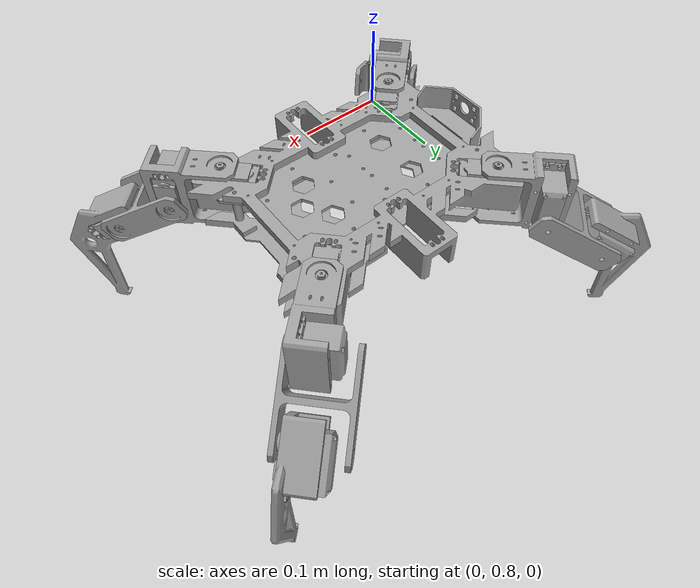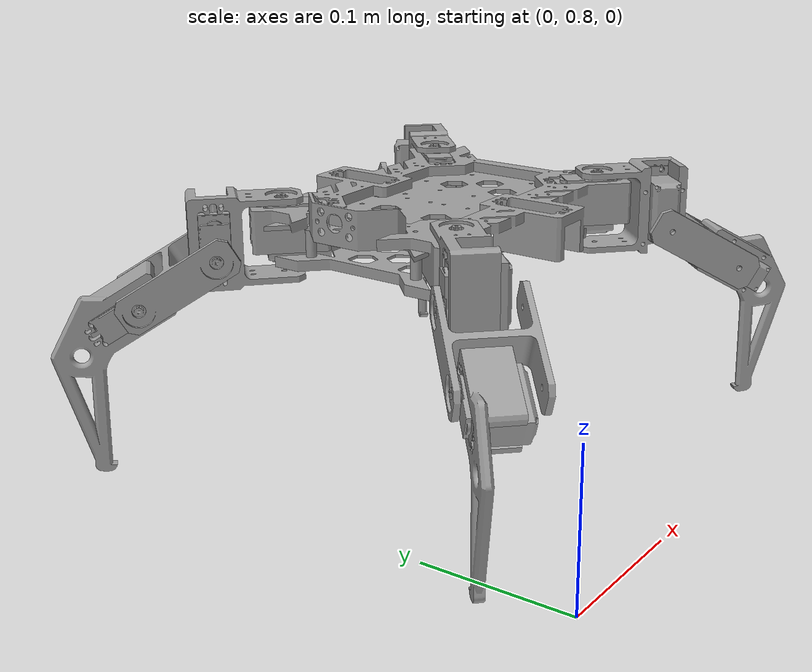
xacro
<?xml version="1.0"?>
<robot xmlns:xacro="http://www.ros.org/wiki/xacro" name="MAGI_Assemblyy">

  <!-- Materials (shared across all assemblies) -->
  <material name="Steel">
    <color rgba="0.627 0.627 0.627 1.0"/>
  </material>

  <!-- Assembly includes -->
  <xacro:include filename="$(find MAGI_Assemblyy_description)/urdf/assemblies/MAGI_Assemblyy.urdf.xacro"/>

  <!-- Instantiate assemblies -->
  <xacro:MAGI_Assemblyy prefix=""/>

</robot>

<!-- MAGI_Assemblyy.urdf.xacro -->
<robot xmlns:xacro="http://www.ros.org/wiki/xacro" name="MAGI_Assemblyy_macro">

  <xacro:macro name="MAGI_Assemblyy" params="prefix">

    <!-- Links -->
    <link name="${prefix}base_link">
      <inertial>
        <origin xyz="0.188950 1.012566 0.124814" rpy="0 0 0"/>
        <mass value="0.461432"/>
        <inertia ixx="7.929840e-02" ixy="8.295237e-06" ixz="1.419208e-04"
                 iyy="1.825252e-01" iyz="-2.865923e-06" izz="2.601024e-01"/>
      </inertial>
      <visual>
        <origin xyz="0.000000 0.000000 0.000000" rpy="0.000000 0.000000 0.000000"/>
        <geometry>
          <mesh filename="package://MAGI_Assemblyy_description/meshes/MAGI_Assemblyy/base_link.dae" scale="1 1 1"/>
        </geometry>
        <material name="Steel"/>
      </visual>
      <collision>
        <origin xyz="0.000000 0.000000 0.000000" rpy="0.000000 0.000000 0.000000"/>
        <geometry>
          <mesh filename="package://MAGI_Assemblyy_description/meshes/MAGI_Assemblyy/base_link_collision.stl" scale="0.01 0.01 0.01"/>
        </geometry>
      </collision>
    </link>

    <link name="${prefix}HexapodV3Mid">
      <inertial>
        <origin xyz="0.056935 -0.338657 0.392833" rpy="0 0 0"/>
        <mass value="0.430715"/>
        <inertia ixx="3.691505e-02" ixy="9.189307e-05" ixz="3.260568e-03"
                 iyy="1.624727e-01" iyz="1.642784e-06" izz="1.982639e-01"/>
      </inertial>
      <visual>
        <origin xyz="0.000000 0.000000 0.000000" rpy="0.000000 0.000000 0.000000"/>
        <geometry>
          <mesh filename="package://MAGI_Assemblyy_description/meshes/MAGI_Assemblyy/HexapodV3Mid.dae" scale="1 1 1"/>
        </geometry>
        <material name="Steel"/>
      </visual>
      <collision>
        <origin xyz="0.000000 0.000000 0.000000" rpy="0.000000 0.000000 0.000000"/>
        <geometry>
          <mesh filename="package://MAGI_Assemblyy_description/meshes/MAGI_Assemblyy/HexapodV3Mid_collision.stl" scale="0.01 0.01 0.01"/>
        </geometry>
      </collision>
    </link>

    <link name="${prefix}HexapodV3Top">
      <inertial>
        <origin xyz="0.148577 2.513000 0.237965" rpy="0 0 0"/>
        <mass value="1.329055"/>
        <inertia ixx="5.538158e-01" ixy="1.518249e-04" ixz="8.338057e-04"
                 iyy="6.473322e-01" iyz="-5.310300e-05" izz="1.181787e+00"/>
      </inertial>
      <visual>
        <origin xyz="0.000000 0.000000 0.000000" rpy="0.000000 0.000000 0.000000"/>
        <geometry>
          <mesh filename="package://MAGI_Assemblyy_description/meshes/MAGI_Assemblyy/HexapodV3Top.dae" scale="1 1 1"/>
        </geometry>
        <material name="Steel"/>
      </visual>
      <collision>
        <origin xyz="0.000000 0.000000 0.000000" rpy="0.000000 0.000000 0.000000"/>
        <geometry>
          <mesh filename="package://MAGI_Assemblyy_description/meshes/MAGI_Assemblyy/HexapodV3Top_collision.stl" scale="0.01 0.01 0.01"/>
        </geometry>
      </collision>
    </link>

    <link name="${prefix}MAGI_Assemblyy_MG996R_servo">
      <inertial>
        <origin xyz="0.020183 0.019509 0.000018" rpy="0 0 0"/>
        <mass value="0.240073"/>
        <inertia ixx="3.608015e-03" ixy="6.266312e-05" ixz="4.838323e-06"
                 iyy="4.048873e-03" iyz="-8.607661e-06" izz="6.116593e-03"/>
      </inertial>
      <visual>
        <origin xyz="0.000000 0.000000 0.000000" rpy="0.000000 0.000000 0.000000"/>
        <geometry>
          <mesh filename="package://MAGI_Assemblyy_description/meshes/MAGI_Assemblyy/MAGI_Assemblyy_MG996R_servo.dae" scale="1 1 1"/>
        </geometry>
        <material name="Steel"/>
      </visual>
      <collision>
        <origin xyz="0.000000 0.000000 0.000000" rpy="0.000000 0.000000 0.000000"/>
        <geometry>
          <mesh filename="package://MAGI_Assemblyy_description/meshes/MAGI_Assemblyy/MAGI_Assemblyy_MG996R_servo_collision.stl" scale="0.01 0.01 0.01"/>
        </geometry>
      </collision>
    </link>

    <link name="${prefix}MAGI_Assemblyy_MG996R_servo_8">
      <inertial>
        <origin xyz="0.020183 0.019509 0.000018" rpy="0 0 0"/>
        <mass value="0.240073"/>
        <inertia ixx="3.608015e-03" ixy="6.266312e-05" ixz="4.838323e-06"
                 iyy="4.048873e-03" iyz="-8.607661e-06" izz="6.116593e-03"/>
      </inertial>
      <visual>
        <origin xyz="0.000000 0.000000 0.000000" rpy="0.000000 0.000000 0.000000"/>
        <geometry>
          <mesh filename="package://MAGI_Assemblyy_description/meshes/MAGI_Assemblyy/MAGI_Assemblyy_MG996R_servo_8.dae" scale="1 1 1"/>
        </geometry>
        <material name="Steel"/>
      </visual>
      <collision>
        <origin xyz="0.000000 0.000000 0.000000" rpy="0.000000 0.000000 0.000000"/>
        <geometry>
          <mesh filename="package://MAGI_Assemblyy_description/meshes/MAGI_Assemblyy/MAGI_Assemblyy_MG996R_servo_8_collision.stl" scale="0.01 0.01 0.01"/>
        </geometry>
      </collision>
    </link>

    <link name="${prefix}MAGI_Assemblyy_MG996R_servo_11">
      <inertial>
        <origin xyz="0.020183 0.019509 0.000018" rpy="0 0 0"/>
        <mass value="0.240073"/>
        <inertia ixx="3.608015e-03" ixy="6.266312e-05" ixz="4.838323e-06"
                 iyy="4.048873e-03" iyz="-8.607661e-06" izz="6.116593e-03"/>
      </inertial>
      <visual>
        <origin xyz="0.000000 0.000000 0.000000" rpy="0.000000 0.000000 0.000000"/>
        <geometry>
          <mesh filename="package://MAGI_Assemblyy_description/meshes/MAGI_Assemblyy/MAGI_Assemblyy_MG996R_servo_11.dae" scale="1 1 1"/>
        </geometry>
        <material name="Steel"/>
      </visual>
      <collision>
        <origin xyz="0.000000 0.000000 0.000000" rpy="0.000000 0.000000 0.000000"/>
        <geometry>
          <mesh filename="package://MAGI_Assemblyy_description/meshes/MAGI_Assemblyy/MAGI_Assemblyy_MG996R_servo_11_collision.stl" scale="0.01 0.01 0.01"/>
        </geometry>
      </collision>
    </link>

    <link name="${prefix}MAGI_Assemblyy_MG996R_servo_5">
      <inertial>
        <origin xyz="0.020183 0.019509 0.000018" rpy="0 0 0"/>
        <mass value="0.240073"/>
        <inertia ixx="3.608015e-03" ixy="6.266312e-05" ixz="4.838323e-06"
                 iyy="4.048873e-03" iyz="-8.607661e-06" izz="6.116593e-03"/>
      </inertial>
      <visual>
        <origin xyz="0.000000 0.000000 0.000000" rpy="0.000000 0.000000 0.000000"/>
        <geometry>
          <mesh filename="package://MAGI_Assemblyy_description/meshes/MAGI_Assemblyy/MAGI_Assemblyy_MG996R_servo_5.dae" scale="1 1 1"/>
        </geometry>
        <material name="Steel"/>
      </visual>
      <collision>
        <origin xyz="0.000000 0.000000 0.000000" rpy="0.000000 0.000000 0.000000"/>
        <geometry>
          <mesh filename="package://MAGI_Assemblyy_description/meshes/MAGI_Assemblyy/MAGI_Assemblyy_MG996R_servo_5_collision.stl" scale="0.01 0.01 0.01"/>
        </geometry>
      </collision>
    </link>

    <link name="${prefix}MAGI_Assemblyy_HQpod_Coxal_Left_v2">
      <inertial>
        <origin xyz="-0.309800 -0.274957 -0.553507" rpy="0 0 0"/>
        <mass value="0.265679"/>
        <inertia ixx="1.676891e-02" ixy="-4.194241e-03" ixz="3.288760e-04"
                 iyy="1.732416e-02" iyz="3.476433e-04" izz="1.224355e-02"/>
      </inertial>
      <visual>
        <origin xyz="-0.790240 -0.541641 0.101007" rpy="0.538487 1.570783 -0.261799"/>
        <geometry>
          <mesh filename="package://MAGI_Assemblyy_description/meshes/MAGI_Assemblyy/MAGI_Assemblyy_HQpod_Coxal_Left_v2.dae" scale="1 1 1"/>
        </geometry>
        <material name="Steel"/>
      </visual>
      <collision>
        <origin xyz="-0.790240 -0.541641 0.101007" rpy="0.538487 1.570783 -0.261799"/>
        <geometry>
          <mesh filename="package://MAGI_Assemblyy_description/meshes/MAGI_Assemblyy/MAGI_Assemblyy_HQpod_Coxal_Left_v2_collision.stl" scale="0.01 0.01 0.01"/>
        </geometry>
      </collision>
    </link>

    <link name="${prefix}MAGI_Assemblyy_HQpod_Coxal_Left_v2_2">
      <inertial>
        <origin xyz="0.407835 0.370113 -0.379153" rpy="0 0 0"/>
        <mass value="0.265679"/>
        <inertia ixx="1.676891e-02" ixy="-4.194241e-03" ixz="-3.288760e-04"
                 iyy="1.732416e-02" iyz="-3.476433e-04" izz="1.224355e-02"/>
      </inertial>
      <visual>
        <origin xyz="0.888275 0.636796 0.275360" rpy="0.538487 1.570783 2.879793"/>
        <geometry>
          <mesh filename="package://MAGI_Assemblyy_description/meshes/MAGI_Assemblyy/MAGI_Assemblyy_HQpod_Coxal_Left_v2_2.dae" scale="1 1 1"/>
        </geometry>
        <material name="Steel"/>
      </visual>
      <collision>
        <origin xyz="0.888275 0.636796 0.275360" rpy="0.538487 1.570783 2.879793"/>
        <geometry>
          <mesh filename="package://MAGI_Assemblyy_description/meshes/MAGI_Assemblyy/MAGI_Assemblyy_HQpod_Coxal_Left_v2_2_collision.stl" scale="0.01 0.01 0.01"/>
        </geometry>
      </collision>
    </link>

    <link name="${prefix}MAGI_Assemblyy_HQpod_Coxal_Right_v2">
      <inertial>
        <origin xyz="-0.820262 0.812012 -0.381004" rpy="0 0 0"/>
        <mass value="0.265916"/>
        <inertia ixx="1.696096e-02" ixy="4.237533e-03" ixz="-4.544269e-04"
                 iyy="1.767587e-02" iyz="4.062247e-04" izz="1.236173e-02"/>
      </inertial>
      <visual>
        <origin xyz="-0.569557 0.769954 0.275480" rpy="-1.154975 1.570793 2.792527"/>
        <geometry>
          <mesh filename="package://MAGI_Assemblyy_description/meshes/MAGI_Assemblyy/MAGI_Assemblyy_HQpod_Coxal_Right_v2.dae" scale="1 1 1"/>
        </geometry>
        <material name="Steel"/>
      </visual>
      <collision>
        <origin xyz="-0.569557 0.769954 0.275480" rpy="-1.154975 1.570793 2.792527"/>
        <geometry>
          <mesh filename="package://MAGI_Assemblyy_description/meshes/MAGI_Assemblyy/MAGI_Assemblyy_HQpod_Coxal_Right_v2_collision.stl" scale="0.01 0.01 0.01"/>
        </geometry>
      </collision>
    </link>

    <link name="${prefix}MAGI_Assemblyy_HQpod_Coxal_Right_v2_2">
      <inertial>
        <origin xyz="0.918919 -0.906703 -0.555651" rpy="0 0 0"/>
        <mass value="0.265916"/>
        <inertia ixx="1.696096e-02" ixy="4.237533e-03" ixz="4.544269e-04"
                 iyy="1.767587e-02" iyz="-4.062247e-04" izz="1.236173e-02"/>
      </inertial>
      <visual>
        <origin xyz="0.668215 -0.864645 0.100833" rpy="-1.154975 1.570793 -0.349066"/>
        <geometry>
          <mesh filename="package://MAGI_Assemblyy_description/meshes/MAGI_Assemblyy/MAGI_Assemblyy_HQpod_Coxal_Right_v2_2.dae" scale="1 1 1"/>
        </geometry>
        <material name="Steel"/>
      </visual>
      <collision>
        <origin xyz="0.668215 -0.864645 0.100833" rpy="-1.154975 1.570793 -0.349066"/>
        <geometry>
          <mesh filename="package://MAGI_Assemblyy_description/meshes/MAGI_Assemblyy/MAGI_Assemblyy_HQpod_Coxal_Right_v2_2_collision.stl" scale="0.01 0.01 0.01"/>
        </geometry>
      </collision>
    </link>

    <link name="${prefix}MAGI_Assemblyy_MG996R_servo_6">
      <inertial>
        <origin xyz="0.020183 0.019509 0.000018" rpy="0 0 0"/>
        <mass value="0.240073"/>
        <inertia ixx="3.608015e-03" ixy="6.266312e-05" ixz="4.838323e-06"
                 iyy="4.048873e-03" iyz="-8.607661e-06" izz="6.116593e-03"/>
      </inertial>
      <visual>
        <origin xyz="0.000000 0.000000 0.000000" rpy="0.000000 0.000000 0.000000"/>
        <geometry>
          <mesh filename="package://MAGI_Assemblyy_description/meshes/MAGI_Assemblyy/MAGI_Assemblyy_MG996R_servo_6.dae" scale="1 1 1"/>
        </geometry>
        <material name="Steel"/>
      </visual>
      <collision>
        <origin xyz="0.000000 0.000000 0.000000" rpy="0.000000 0.000000 0.000000"/>
        <geometry>
          <mesh filename="package://MAGI_Assemblyy_description/meshes/MAGI_Assemblyy/MAGI_Assemblyy_MG996R_servo_6_collision.stl" scale="0.01 0.01 0.01"/>
        </geometry>
      </collision>
    </link>

    <link name="${prefix}MAGI_Assemblyy_MG996R_servo_9">
      <inertial>
        <origin xyz="0.020183 0.019509 0.000018" rpy="0 0 0"/>
        <mass value="0.240073"/>
        <inertia ixx="3.608015e-03" ixy="6.266312e-05" ixz="4.838323e-06"
                 iyy="4.048873e-03" iyz="-8.607661e-06" izz="6.116593e-03"/>
      </inertial>
      <visual>
        <origin xyz="0.000000 0.000000 0.000000" rpy="0.000000 0.000000 0.000000"/>
        <geometry>
          <mesh filename="package://MAGI_Assemblyy_description/meshes/MAGI_Assemblyy/MAGI_Assemblyy_MG996R_servo_9.dae" scale="1 1 1"/>
        </geometry>
        <material name="Steel"/>
      </visual>
      <collision>
        <origin xyz="0.000000 0.000000 0.000000" rpy="0.000000 0.000000 0.000000"/>
        <geometry>
          <mesh filename="package://MAGI_Assemblyy_description/meshes/MAGI_Assemblyy/MAGI_Assemblyy_MG996R_servo_9_collision.stl" scale="0.01 0.01 0.01"/>
        </geometry>
      </collision>
    </link>

    <link name="${prefix}MAGI_Assemblyy_MG996R_servo_12">
      <inertial>
        <origin xyz="0.020183 0.019509 0.000018" rpy="0 0 0"/>
        <mass value="0.240073"/>
        <inertia ixx="3.608015e-03" ixy="6.266312e-05" ixz="4.838323e-06"
                 iyy="4.048873e-03" iyz="-8.607661e-06" izz="6.116593e-03"/>
      </inertial>
      <visual>
        <origin xyz="0.000000 0.000000 0.000000" rpy="0.000000 0.000000 0.000000"/>
        <geometry>
          <mesh filename="package://MAGI_Assemblyy_description/meshes/MAGI_Assemblyy/MAGI_Assemblyy_MG996R_servo_12.dae" scale="1 1 1"/>
        </geometry>
        <material name="Steel"/>
      </visual>
      <collision>
        <origin xyz="0.000000 0.000000 0.000000" rpy="0.000000 0.000000 0.000000"/>
        <geometry>
          <mesh filename="package://MAGI_Assemblyy_description/meshes/MAGI_Assemblyy/MAGI_Assemblyy_MG996R_servo_12_collision.stl" scale="0.01 0.01 0.01"/>
        </geometry>
      </collision>
    </link>

    <link name="${prefix}MAGI_Assemblyy_MG996R_servo_4">
      <inertial>
        <origin xyz="0.020183 0.019509 0.000018" rpy="0 0 0"/>
        <mass value="0.240073"/>
        <inertia ixx="3.608015e-03" ixy="6.266312e-05" ixz="4.838323e-06"
                 iyy="4.048873e-03" iyz="-8.607661e-06" izz="6.116593e-03"/>
      </inertial>
      <visual>
        <origin xyz="0.000000 0.000000 0.000000" rpy="0.000000 0.000000 0.000000"/>
        <geometry>
          <mesh filename="package://MAGI_Assemblyy_description/meshes/MAGI_Assemblyy/MAGI_Assemblyy_MG996R_servo_4.dae" scale="1 1 1"/>
        </geometry>
        <material name="Steel"/>
      </visual>
      <collision>
        <origin xyz="0.000000 0.000000 0.000000" rpy="0.000000 0.000000 0.000000"/>
        <geometry>
          <mesh filename="package://MAGI_Assemblyy_description/meshes/MAGI_Assemblyy/MAGI_Assemblyy_MG996R_servo_4_collision.stl" scale="0.01 0.01 0.01"/>
        </geometry>
      </collision>
    </link>

    <link name="${prefix}MAGI_Assemblyy_HQpod_Femur">
      <inertial>
        <origin xyz="-0.471069 -0.056915 0.403484" rpy="0 0 0"/>
        <mass value="0.175899"/>
        <inertia ixx="1.183024e-02" ixy="2.456645e-03" ixz="2.454876e-06"
                 iyy="1.467091e-02" iyz="7.559260e-07" izz="7.700635e-03"/>
      </inertial>
      <visual>
        <origin xyz="-0.512382 -0.773114 -0.127693" rpy="0.000000 0.000000 -0.523618"/>
        <geometry>
          <mesh filename="package://MAGI_Assemblyy_description/meshes/MAGI_Assemblyy/MAGI_Assemblyy_HQpod_Femur.dae" scale="1 1 1"/>
        </geometry>
        <material name="Steel"/>
      </visual>
      <collision>
        <origin xyz="-0.512382 -0.773114 -0.127693" rpy="0.000000 0.000000 -0.523618"/>
        <geometry>
          <mesh filename="package://MAGI_Assemblyy_description/meshes/MAGI_Assemblyy/MAGI_Assemblyy_HQpod_Femur_collision.stl" scale="0.01 0.01 0.01"/>
        </geometry>
      </collision>
    </link>

    <link name="${prefix}MAGI_Assemblyy_HQpod_Femur_2">
      <inertial>
        <origin xyz="-0.784904 -0.077019 0.403582" rpy="0 0 0"/>
        <mass value="0.175899"/>
        <inertia ixx="1.183024e-02" ixy="2.456645e-03" ixz="2.454876e-06"
                 iyy="1.467091e-02" iyz="7.559260e-07" izz="7.700635e-03"/>
      </inertial>
      <visual>
        <origin xyz="-0.826216 -0.793218 -0.127595" rpy="0.000000 0.000000 -0.523618"/>
        <geometry>
          <mesh filename="package://MAGI_Assemblyy_description/meshes/MAGI_Assemblyy/MAGI_Assemblyy_HQpod_Femur_2.dae" scale="1 1 1"/>
        </geometry>
        <material name="Steel"/>
      </visual>
      <collision>
        <origin xyz="-0.826216 -0.793218 -0.127595" rpy="0.000000 0.000000 -0.523618"/>
        <geometry>
          <mesh filename="package://MAGI_Assemblyy_description/meshes/MAGI_Assemblyy/MAGI_Assemblyy_HQpod_Femur_2_collision.stl" scale="0.01 0.01 0.01"/>
        </geometry>
      </collision>
    </link>

    <link name="${prefix}MAGI_Assemblyy_HQpod_Femur_3">
      <inertial>
        <origin xyz="-0.413357 -0.567581 0.404129" rpy="0 0 0"/>
        <mass value="0.175899"/>
        <inertia ixx="1.183335e-02" ixy="-2.458437e-03" ixz="5.727264e-07"
                 iyy="1.466781e-02" iyz="2.503962e-06" izz="7.700635e-03"/>
      </inertial>
      <visual>
        <origin xyz="0.186243 -0.961443 -0.127048" rpy="0.000000 0.000000 0.523604"/>
        <geometry>
          <mesh filename="package://MAGI_Assemblyy_description/meshes/MAGI_Assemblyy/MAGI_Assemblyy_HQpod_Femur_3.dae" scale="1 1 1"/>
        </geometry>
        <material name="Steel"/>
      </visual>
      <collision>
        <origin xyz="0.186243 -0.961443 -0.127048" rpy="0.000000 0.000000 0.523604"/>
        <geometry>
          <mesh filename="package://MAGI_Assemblyy_description/meshes/MAGI_Assemblyy/MAGI_Assemblyy_HQpod_Femur_3_collision.stl" scale="0.01 0.01 0.01"/>
        </geometry>
      </collision>
    </link>

    <link name="${prefix}MAGI_Assemblyy_HQpod_Femur_4">
      <inertial>
        <origin xyz="0.099264 0.586456 0.404164" rpy="0 0 0"/>
        <mass value="0.175899"/>
        <inertia ixx="1.183335e-02" ixy="-2.458437e-03" ixz="-5.727264e-07"
                 iyy="1.466781e-02" iyz="-2.503962e-06" izz="7.700635e-03"/>
      </inertial>
      <visual>
        <origin xyz="-0.500337 0.980318 -0.127013" rpy="0.000000 0.000000 -2.617989"/>
        <geometry>
          <mesh filename="package://MAGI_Assemblyy_description/meshes/MAGI_Assemblyy/MAGI_Assemblyy_HQpod_Femur_4.dae" scale="1 1 1"/>
        </geometry>
        <material name="Steel"/>
      </visual>
      <collision>
        <origin xyz="-0.500337 0.980318 -0.127013" rpy="0.000000 0.000000 -2.617989"/>
        <geometry>
          <mesh filename="package://MAGI_Assemblyy_description/meshes/MAGI_Assemblyy/MAGI_Assemblyy_HQpod_Femur_4_collision.stl" scale="0.01 0.01 0.01"/>
        </geometry>
      </collision>
    </link>

    <link name="${prefix}MAGI_Assemblyy_MG996R_servo_7">
      <inertial>
        <origin xyz="-0.048599 -0.085491 -0.870965" rpy="0 0 0"/>
        <mass value="0.240073"/>
        <inertia ixx="4.231010e-03" ixy="1.083851e-03" ixz="-5.857124e-05"
                 iyy="5.493598e-03" iyz="2.387821e-05" izz="4.048873e-03"/>
      </inertial>
      <visual>
        <origin xyz="-0.031129 -0.095598 -0.890475" rpy="1.570796 0.000000 2.617975"/>
        <geometry>
          <mesh filename="package://MAGI_Assemblyy_description/meshes/MAGI_Assemblyy/MAGI_Assemblyy_MG996R_servo_7.dae" scale="1 1 1"/>
        </geometry>
        <material name="Steel"/>
      </visual>
      <collision>
        <origin xyz="-0.031129 -0.095598 -0.890475" rpy="1.570796 0.000000 2.617975"/>
        <geometry>
          <mesh filename="package://MAGI_Assemblyy_description/meshes/MAGI_Assemblyy/MAGI_Assemblyy_MG996R_servo_7_collision.stl" scale="0.01 0.01 0.01"/>
        </geometry>
      </collision>
    </link>

    <link name="${prefix}MAGI_Assemblyy_MG996R_servo_10">
      <inertial>
        <origin xyz="-0.241021 0.252597 -1.115805" rpy="0 0 0"/>
        <mass value="0.240073"/>
        <inertia ixx="4.231010e-03" ixy="1.083851e-03" ixz="5.857124e-05"
                 iyy="5.493598e-03" iyz="-2.387821e-05" izz="4.048873e-03"/>
      </inertial>
      <visual>
        <origin xyz="-0.258491 0.262704 -1.135315" rpy="1.570796 0.000000 -0.523618"/>
        <geometry>
          <mesh filename="package://MAGI_Assemblyy_description/meshes/MAGI_Assemblyy/MAGI_Assemblyy_MG996R_servo_10.dae" scale="1 1 1"/>
        </geometry>
        <material name="Steel"/>
      </visual>
      <collision>
        <origin xyz="-0.258491 0.262704 -1.135315" rpy="1.570796 0.000000 -0.523618"/>
        <geometry>
          <mesh filename="package://MAGI_Assemblyy_description/meshes/MAGI_Assemblyy/MAGI_Assemblyy_MG996R_servo_10_collision.stl" scale="0.01 0.01 0.01"/>
        </geometry>
      </collision>
    </link>

    <link name="${prefix}MAGI_Assemblyy_MG996R_servo_2">
      <inertial>
        <origin xyz="-0.339779 -0.083169 -0.871127" rpy="0 0 0"/>
        <mass value="0.240073"/>
        <inertia ixx="4.239361e-03" ixy="-1.088672e-03" ixz="4.996382e-05"
                 iyy="5.485247e-03" iyz="3.878628e-05" izz="4.048873e-03"/>
      </inertial>
      <visual>
        <origin xyz="-0.357267 -0.093245 -0.890636" rpy="1.570796 0.000000 0.523604"/>
        <geometry>
          <mesh filename="package://MAGI_Assemblyy_description/meshes/MAGI_Assemblyy/MAGI_Assemblyy_MG996R_servo_2.dae" scale="1 1 1"/>
        </geometry>
        <material name="Steel"/>
      </visual>
      <collision>
        <origin xyz="-0.357267 -0.093245 -0.890636" rpy="1.570796 0.000000 0.523604"/>
        <geometry>
          <mesh filename="package://MAGI_Assemblyy_description/meshes/MAGI_Assemblyy/MAGI_Assemblyy_MG996R_servo_2_collision.stl" scale="0.01 0.01 0.01"/>
        </geometry>
      </collision>
    </link>

    <link name="${prefix}MAGI_Assemblyy_MG996R_servo_3">
      <inertial>
        <origin xyz="0.048992 -0.084679 -1.114757" rpy="0 0 0"/>
        <mass value="0.240073"/>
        <inertia ixx="4.239361e-03" ixy="-1.088672e-03" ixz="-4.996382e-05"
                 iyy="5.485247e-03" iyz="-3.878628e-05" izz="4.048873e-03"/>
      </inertial>
      <visual>
        <origin xyz="0.066480 -0.074603 -1.134266" rpy="1.570796 0.000000 -2.617989"/>
        <geometry>
          <mesh filename="package://MAGI_Assemblyy_description/meshes/MAGI_Assemblyy/MAGI_Assemblyy_MG996R_servo_3.dae" scale="1 1 1"/>
        </geometry>
        <material name="Steel"/>
      </visual>
      <collision>
        <origin xyz="0.066480 -0.074603 -1.134266" rpy="1.570796 0.000000 -2.617989"/>
        <geometry>
          <mesh filename="package://MAGI_Assemblyy_description/meshes/MAGI_Assemblyy/MAGI_Assemblyy_MG996R_servo_3_collision.stl" scale="0.01 0.01 0.01"/>
        </geometry>
      </collision>
    </link>

    <link name="${prefix}MAGI_Assemblyy_HQpod_Tibia_Left_New_2">
      <inertial>
        <origin xyz="0.582305 -0.145807 0.138886" rpy="0 0 0"/>
        <mass value="0.251392"/>
        <inertia ixx="2.393898e-02" ixy="1.325800e-02" ixz="-2.855455e-04"
                 iyy="2.481506e-02" iyz="-2.707864e-03" izz="4.431233e-02"/>
      </inertial>
      <visual>
        <origin xyz="0.000000 0.000000 0.000000" rpy="0.000000 0.000000 0.000000"/>
        <geometry>
          <mesh filename="package://MAGI_Assemblyy_description/meshes/MAGI_Assemblyy/MAGI_Assemblyy_HQpod_Tibia_Left_New_2.dae" scale="1 1 1"/>
        </geometry>
        <material name="Steel"/>
      </visual>
      <collision>
        <origin xyz="0.000000 0.000000 0.000000" rpy="0.000000 0.000000 0.000000"/>
        <geometry>
          <mesh filename="package://MAGI_Assemblyy_description/meshes/MAGI_Assemblyy/MAGI_Assemblyy_HQpod_Tibia_Left_New_2_collision.stl" scale="0.01 0.01 0.01"/>
        </geometry>
      </collision>
    </link>

    <link name="${prefix}MAGI_Assemblyy_HQpod_Tibia_Left_New">
      <inertial>
        <origin xyz="0.582305 -0.145807 0.138886" rpy="0 0 0"/>
        <mass value="0.251392"/>
        <inertia ixx="2.393898e-02" ixy="1.325800e-02" ixz="-2.855455e-04"
                 iyy="2.481506e-02" iyz="-2.707864e-03" izz="4.431233e-02"/>
      </inertial>
      <visual>
        <origin xyz="0.000000 0.000000 0.000000" rpy="0.000000 0.000000 0.000000"/>
        <geometry>
          <mesh filename="package://MAGI_Assemblyy_description/meshes/MAGI_Assemblyy/MAGI_Assemblyy_HQpod_Tibia_Left_New.dae" scale="1 1 1"/>
        </geometry>
        <material name="Steel"/>
      </visual>
      <collision>
        <origin xyz="0.000000 0.000000 0.000000" rpy="0.000000 0.000000 0.000000"/>
        <geometry>
          <mesh filename="package://MAGI_Assemblyy_description/meshes/MAGI_Assemblyy/MAGI_Assemblyy_HQpod_Tibia_Left_New_collision.stl" scale="0.01 0.01 0.01"/>
        </geometry>
      </collision>
    </link>

    <link name="${prefix}MAGI_Assemblyy_HQpod_Tibia_Right_New_2">
      <inertial>
        <origin xyz="-0.877113 -0.145848 0.138887" rpy="0 0 0"/>
        <mass value="0.251560"/>
        <inertia ixx="2.394830e-02" ixy="-1.415167e-02" ixz="1.107935e-03"
                 iyy="3.404113e-02" iyz="-2.735536e-03" izz="5.358012e-02"/>
      </inertial>
      <visual>
        <origin xyz="0.000000 0.000000 0.000000" rpy="0.000000 0.000000 0.000000"/>
        <geometry>
          <mesh filename="package://MAGI_Assemblyy_description/meshes/MAGI_Assemblyy/MAGI_Assemblyy_HQpod_Tibia_Right_New_2.dae" scale="1 1 1"/>
        </geometry>
        <material name="Steel"/>
      </visual>
      <collision>
        <origin xyz="0.000000 0.000000 0.000000" rpy="0.000000 0.000000 0.000000"/>
        <geometry>
          <mesh filename="package://MAGI_Assemblyy_description/meshes/MAGI_Assemblyy/MAGI_Assemblyy_HQpod_Tibia_Right_New_2_collision.stl" scale="0.01 0.01 0.01"/>
        </geometry>
      </collision>
    </link>

    <link name="${prefix}MAGI_Assemblyy_HQpod_Tibia_Right_New">
      <inertial>
        <origin xyz="-0.877113 -0.145848 0.138887" rpy="0 0 0"/>
        <mass value="0.251560"/>
        <inertia ixx="2.394830e-02" ixy="-1.415167e-02" ixz="1.107935e-03"
                 iyy="3.404113e-02" iyz="-2.735536e-03" izz="5.358012e-02"/>
      </inertial>
      <visual>
        <origin xyz="0.000000 0.000000 0.000000" rpy="0.000000 0.000000 0.000000"/>
        <geometry>
          <mesh filename="package://MAGI_Assemblyy_description/meshes/MAGI_Assemblyy/MAGI_Assemblyy_HQpod_Tibia_Right_New.dae" scale="1 1 1"/>
        </geometry>
        <material name="Steel"/>
      </visual>
      <collision>
        <origin xyz="0.000000 0.000000 0.000000" rpy="0.000000 0.000000 0.000000"/>
        <geometry>
          <mesh filename="package://MAGI_Assemblyy_description/meshes/MAGI_Assemblyy/MAGI_Assemblyy_HQpod_Tibia_Right_New_collision.stl" scale="0.01 0.01 0.01"/>
        </geometry>
      </collision>
    </link>

    <!-- Joints (internal to assembly) -->
    <joint name="${prefix}Rigid_1" type="fixed">
      <parent link="${prefix}base_link"/>
      <child link="${prefix}HexapodV3Mid"/>
      <origin xyz="0.113207 1.351156 -0.242000" rpy="-0.000000 0.000000 0.000000"/>
    </joint>

    <joint name="${prefix}Rigid_2" type="fixed">
      <parent link="${prefix}HexapodV3Mid"/>
      <child link="${prefix}HexapodV3Top"/>
      <origin xyz="-0.074434 -2.851566 0.152148" rpy="0.000000 0.000000 0.000000"/>
    </joint>

    <joint name="${prefix}Rigid_4" type="fixed">
      <parent link="${prefix}HexapodV3Top"/>
      <child link="${prefix}MAGI_Assemblyy_MG996R_servo"/>
      <origin xyz="0.054925 2.437386 0.211602" rpy="1.570796 0.000000 0.785398"/>
    </joint>

    <joint name="${prefix}Rigid_10" type="fixed">
      <parent link="${prefix}HexapodV3Top"/>
      <child link="${prefix}MAGI_Assemblyy_MG996R_servo_8"/>
      <origin xyz="0.243915 2.588642 0.211602" rpy="1.570796 0.000000 -2.356194"/>
    </joint>

    <joint name="${prefix}Rigid_17" type="fixed">
      <parent link="${prefix}HexapodV3Top"/>
      <child link="${prefix}MAGI_Assemblyy_MG996R_servo_11"/>
      <origin xyz="0.244023 2.437165 0.210956" rpy="1.570796 0.000000 2.356194"/>
    </joint>

    <joint name="${prefix}Rigid_29" type="fixed">
      <parent link="${prefix}HexapodV3Top"/>
      <child link="${prefix}MAGI_Assemblyy_MG996R_servo_5"/>
      <origin xyz="0.054739 2.588547 0.210956" rpy="1.570796 0.000000 -0.785398"/>
    </joint>

    <joint name="${prefix}Revolute_5" type="revolute">
      <parent link="${prefix}MAGI_Assemblyy_MG996R_servo"/>
      <child link="${prefix}MAGI_Assemblyy_HQpod_Coxal_Left_v2"/>
      <origin xyz="0.389152 0.569011 0.023325" rpy="-1.570796 -0.785398 0.000000"/>
      <axis xyz="0.000000 0.000000 1.000000"/>
      <limit lower="-0.593412" upper="1.570796" effort="100.0" velocity="1.00"/>
      <dynamics damping="0.5" friction="0.1"/>
    </joint>

    <joint name="${prefix}Revolute_12" type="revolute">
      <parent link="${prefix}MAGI_Assemblyy_MG996R_servo_8"/>
      <child link="${prefix}MAGI_Assemblyy_HQpod_Coxal_Left_v2_2"/>
      <origin xyz="0.525758 0.394657 0.025361" rpy="1.570796 0.785398 -3.141593"/>
      <axis xyz="0.000000 0.000000 1.000000"/>
      <limit lower="-0.383972" upper="1.570796" effort="100.0" velocity="1.00"/>
      <dynamics damping="0.5" friction="0.1"/>
    </joint>

    <joint name="${prefix}Revolute_18" type="revolute">
      <parent link="${prefix}MAGI_Assemblyy_MG996R_servo_11"/>
      <child link="${prefix}MAGI_Assemblyy_HQpod_Coxal_Right_v2"/>
      <origin xyz="-1.178517 0.396542 0.007343" rpy="1.570796 -0.785398 -3.141593"/>
      <axis xyz="0.000000 0.000000 1.000000"/>
      <limit lower="-1.570796" upper="0.383972" effort="100.0" velocity="1.00"/>
      <dynamics damping="0.5" friction="0.1"/>
    </joint>

    <joint name="${prefix}Revolute_24" type="revolute">
      <parent link="${prefix}MAGI_Assemblyy_MG996R_servo_5"/>
      <child link="${prefix}MAGI_Assemblyy_HQpod_Coxal_Right_v2_2"/>
      <origin xyz="-1.315235 0.571189 0.010147" rpy="-1.570796 0.785398 0.000000"/>
      <axis xyz="0.000000 0.000000 1.000000"/>
      <limit lower="-1.570796" upper="0.593412" effort="100.0" velocity="1.00"/>
      <dynamics damping="0.5" friction="0.1"/>
    </joint>

    <joint name="${prefix}Rigid_6" type="fixed">
      <parent link="${prefix}MAGI_Assemblyy_HQpod_Coxal_Left_v2"/>
      <child link="${prefix}MAGI_Assemblyy_MG996R_servo_6"/>
      <origin xyz="-0.300345 -0.298625 -0.573417" rpy="-2.077761 -1.570782 2.848271"/>
    </joint>

    <joint name="${prefix}Rigid_13" type="fixed">
      <parent link="${prefix}MAGI_Assemblyy_HQpod_Coxal_Left_v2_2"/>
      <child link="${prefix}MAGI_Assemblyy_MG996R_servo_9"/>
      <origin xyz="0.398051 0.394361 -0.399161" rpy="-2.077761 -1.570782 -0.293322"/>
    </joint>

    <joint name="${prefix}Rigid_19" type="fixed">
      <parent link="${prefix}MAGI_Assemblyy_HQpod_Coxal_Right_v2"/>
      <child link="${prefix}MAGI_Assemblyy_MG996R_servo_12"/>
      <origin xyz="-0.829584 0.788290 -0.400947" rpy="-0.545389 -1.570792 -0.219497"/>
    </joint>

    <joint name="${prefix}Rigid_25" type="fixed">
      <parent link="${prefix}MAGI_Assemblyy_HQpod_Coxal_Right_v2_2"/>
      <child link="${prefix}MAGI_Assemblyy_MG996R_servo_4"/>
      <origin xyz="0.928230 -0.882970 -0.575629" rpy="-0.545389 -1.570792 2.922096"/>
    </joint>

    <joint name="${prefix}Revolute_7" type="revolute">
      <parent link="${prefix}MAGI_Assemblyy_MG996R_servo_6"/>
      <child link="${prefix}MAGI_Assemblyy_HQpod_Femur"/>
      <origin xyz="-0.061224 -0.389313 -0.445687" rpy="1.570796 1.570777 -3.141593"/>
      <axis xyz="0.000000 0.000000 1.000000"/>
      <limit lower="-1.396263" upper="0.959931" effort="100.0" velocity="1.00"/>
      <dynamics damping="0.5" friction="0.1"/>
    </joint>

    <joint name="${prefix}Revolute_14" type="revolute">
      <parent link="${prefix}MAGI_Assemblyy_MG996R_servo_9"/>
      <child link="${prefix}MAGI_Assemblyy_HQpod_Femur_2"/>
      <origin xyz="0.072694 -0.389411 0.810137" rpy="-1.570796 -1.570777 -0.000000"/>
      <axis xyz="0.000000 0.000000 1.000000"/>
      <limit lower="-1.396263" upper="0.959931" effort="100.0" velocity="1.00"/>
      <dynamics damping="0.5" friction="0.1"/>
    </joint>

    <joint name="${prefix}Revolute_20" type="revolute">
      <parent link="${prefix}MAGI_Assemblyy_MG996R_servo_12"/>
      <child link="${prefix}MAGI_Assemblyy_HQpod_Femur_3"/>
      <origin xyz="-0.571739 -0.389958 -0.438697" rpy="-1.570796 1.570791 -0.000000"/>
      <axis xyz="0.000000 0.000000 1.000000"/>
      <limit lower="-0.959931" upper="1.396263" effort="100.0" velocity="1.00"/>
      <dynamics damping="0.5" friction="0.1"/>
    </joint>

    <joint name="${prefix}Revolute_26" type="revolute">
      <parent link="${prefix}MAGI_Assemblyy_MG996R_servo_4"/>
      <child link="${prefix}MAGI_Assemblyy_HQpod_Femur_4"/>
      <origin xyz="-0.590615 -0.389993 -0.124604" rpy="1.570796 -1.570791 3.141593"/>
      <axis xyz="0.000000 0.000000 1.000000"/>
      <limit lower="-0.959931" upper="1.396263" effort="100.0" velocity="1.00"/>
      <dynamics damping="0.5" friction="0.1"/>
    </joint>

    <joint name="${prefix}Revolute_8" type="revolute">
      <parent link="${prefix}MAGI_Assemblyy_HQpod_Femur"/>
      <child link="${prefix}MAGI_Assemblyy_MG996R_servo_7"/>
      <origin xyz="-0.456212 0.048197 1.279788" rpy="0.000000 0.000000 0.000000"/>
      <axis xyz="0.000000 0.000000 1.000000"/>
      <limit lower="-1.570796" upper="1.570796" effort="100.0" velocity="1.00"/>
      <dynamics damping="0.5" friction="0.1"/>
    </joint>

    <joint name="${prefix}Revolute_15" type="revolute">
      <parent link="${prefix}MAGI_Assemblyy_HQpod_Femur_2"/>
      <child link="${prefix}MAGI_Assemblyy_MG996R_servo_10"/>
      <origin xyz="-0.509995 -0.349198 1.524726" rpy="0.000000 0.000000 0.000000"/>
      <axis xyz="0.000000 0.000000 1.000000"/>
      <limit lower="-1.570796" upper="1.570796" effort="100.0" velocity="1.00"/>
      <dynamics damping="0.5" friction="0.1"/>
    </joint>

    <joint name="${prefix}Revolute_21" type="revolute">
      <parent link="${prefix}MAGI_Assemblyy_HQpod_Femur_3"/>
      <child link="${prefix}MAGI_Assemblyy_MG996R_servo_2"/>
      <origin xyz="-0.039675 -0.464855 1.280594" rpy="0.000000 0.000000 0.000000"/>
      <axis xyz="0.000000 0.000000 1.000000"/>
      <limit lower="-1.570796" upper="1.570796" effort="100.0" velocity="1.00"/>
      <dynamics damping="0.5" friction="0.1"/>
    </joint>

    <joint name="${prefix}Revolute_27" type="revolute">
      <parent link="${prefix}MAGI_Assemblyy_HQpod_Femur_4"/>
      <child link="${prefix}MAGI_Assemblyy_MG996R_servo_3"/>
      <origin xyz="0.016368 0.651577 1.524259" rpy="0.000000 0.000000 0.000000"/>
      <axis xyz="0.000000 0.000000 1.000000"/>
      <limit lower="-1.570796" upper="1.570796" effort="100.0" velocity="1.00"/>
      <dynamics damping="0.5" friction="0.1"/>
    </joint>

    <joint name="${prefix}Rigid_32" type="fixed">
      <parent link="${prefix}MAGI_Assemblyy_MG996R_servo_7"/>
      <child link="${prefix}MAGI_Assemblyy_HQpod_Tibia_Left_New_2"/>
      <origin xyz="-0.223193 -0.646148 -0.724653" rpy="-3.141590 0.000001 1.047179"/>
    </joint>

    <joint name="${prefix}Rigid_31" type="fixed">
      <parent link="${prefix}MAGI_Assemblyy_MG996R_servo_10"/>
      <child link="${prefix}MAGI_Assemblyy_HQpod_Tibia_Left_New"/>
      <origin xyz="-0.066449 0.813285 -0.969493" rpy="-3.141590 0.000001 -2.094414"/>
    </joint>

    <joint name="${prefix}Rigid_34" type="fixed">
      <parent link="${prefix}MAGI_Assemblyy_MG996R_servo_2"/>
      <child link="${prefix}MAGI_Assemblyy_HQpod_Tibia_Right_New_2"/>
      <origin xyz="-0.017717 -0.899331 -0.724814" rpy="-3.141590 -0.000001 -1.047192"/>
    </joint>

    <joint name="${prefix}Rigid_33" type="fixed">
      <parent link="${prefix}MAGI_Assemblyy_MG996R_servo_3"/>
      <child link="${prefix}MAGI_Assemblyy_HQpod_Tibia_Right_New"/>
      <origin xyz="-0.273092 0.731453 -0.968444" rpy="-3.141590 -0.000001 2.094400"/>
    </joint>

    <!-- ROS 2 control: generated generic system -->
    <ros2_control name="${prefix}MAGI_Assemblyy_system" type="system">
      <hardware>
        <plugin>mock_components/GenericSystem</plugin>
        <param name="cmd_topic">sim/MAGI_Assemblyy_system/cmd</param>
        <param name="state_topic">sim/MAGI_Assemblyy_system/state</param>
      </hardware>

      <joint name="${prefix}Revolute_12">
        <command_interface name="position"/>
        <command_interface name="velocity"/>
        <state_interface name="position">
          <param name="initial_value">0.0</param>
        </state_interface>
        <state_interface name="velocity"/>
        <state_interface name="effort"/>
      </joint>
      <joint name="${prefix}Revolute_14">
        <command_interface name="position"/>
        <command_interface name="velocity"/>
        <state_interface name="position">
          <param name="initial_value">0.0</param>
        </state_interface>
        <state_interface name="velocity"/>
        <state_interface name="effort"/>
      </joint>
      <joint name="${prefix}Revolute_15">
        <command_interface name="position"/>
        <command_interface name="velocity"/>
        <state_interface name="position">
          <param name="initial_value">0.0</param>
        </state_interface>
        <state_interface name="velocity"/>
        <state_interface name="effort"/>
      </joint>
      <joint name="${prefix}Revolute_18">
        <command_interface name="position"/>
        <command_interface name="velocity"/>
        <state_interface name="position">
          <param name="initial_value">0.0</param>
        </state_interface>
        <state_interface name="velocity"/>
        <state_interface name="effort"/>
      </joint>
      <joint name="${prefix}Revolute_20">
        <command_interface name="position"/>
        <command_interface name="velocity"/>
        <state_interface name="position">
          <param name="initial_value">0.0</param>
        </state_interface>
        <state_interface name="velocity"/>
        <state_interface name="effort"/>
      </joint>
      <joint name="${prefix}Revolute_21">
        <command_interface name="position"/>
        <command_interface name="velocity"/>
        <state_interface name="position">
          <param name="initial_value">0.0</param>
        </state_interface>
        <state_interface name="velocity"/>
        <state_interface name="effort"/>
      </joint>
      <joint name="${prefix}Revolute_24">
        <command_interface name="position"/>
        <command_interface name="velocity"/>
        <state_interface name="position">
          <param name="initial_value">0.0</param>
        </state_interface>
        <state_interface name="velocity"/>
        <state_interface name="effort"/>
      </joint>
      <joint name="${prefix}Revolute_26">
        <command_interface name="position"/>
        <command_interface name="velocity"/>
        <state_interface name="position">
          <param name="initial_value">0.0</param>
        </state_interface>
        <state_interface name="velocity"/>
        <state_interface name="effort"/>
      </joint>
      <joint name="${prefix}Revolute_27">
        <command_interface name="position"/>
        <command_interface name="velocity"/>
        <state_interface name="position">
          <param name="initial_value">0.0</param>
        </state_interface>
        <state_interface name="velocity"/>
        <state_interface name="effort"/>
      </joint>
      <joint name="${prefix}Revolute_5">
        <command_interface name="position"/>
        <command_interface name="velocity"/>
        <state_interface name="position">
          <param name="initial_value">0.0</param>
        </state_interface>
        <state_interface name="velocity"/>
        <state_interface name="effort"/>
      </joint>
      <joint name="${prefix}Revolute_7">
        <command_interface name="position"/>
        <command_interface name="velocity"/>
        <state_interface name="position">
          <param name="initial_value">0.0</param>
        </state_interface>
        <state_interface name="velocity"/>
        <state_interface name="effort"/>
      </joint>
      <joint name="${prefix}Revolute_8">
        <command_interface name="position"/>
        <command_interface name="velocity"/>
        <state_interface name="position">
          <param name="initial_value">0.0</param>
        </state_interface>
        <state_interface name="velocity"/>
        <state_interface name="effort"/>
      </joint>
    </ros2_control>

  </xacro:macro>

</robot>
